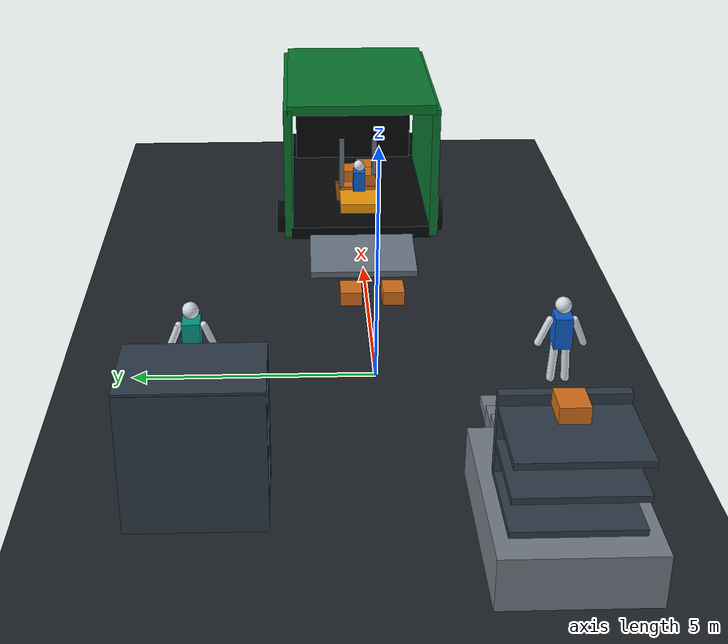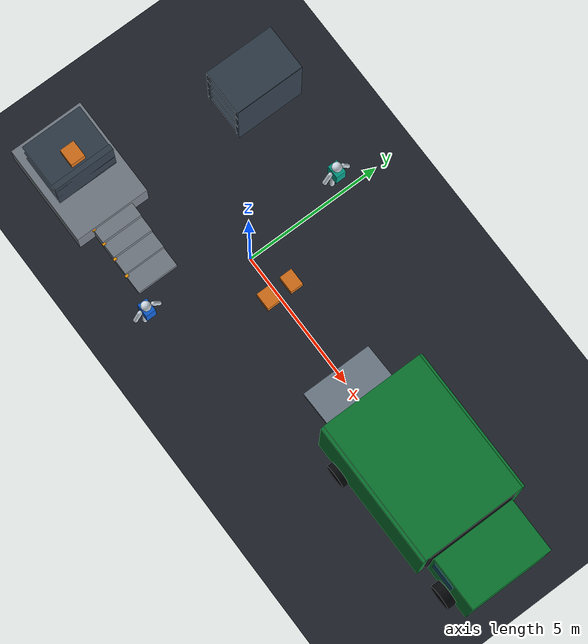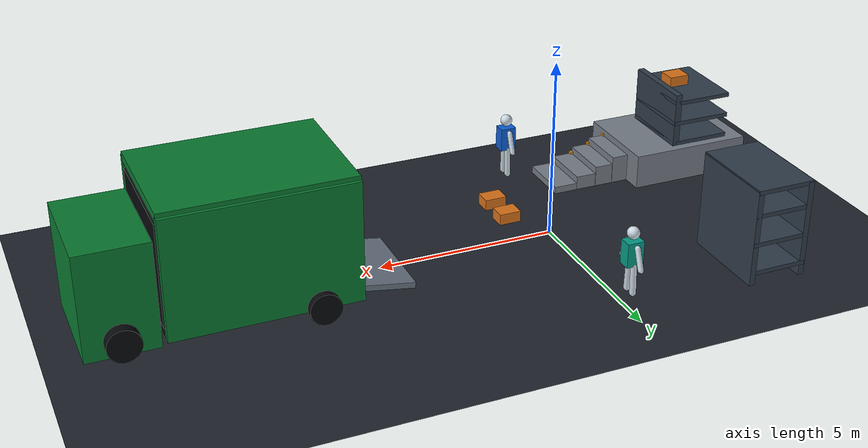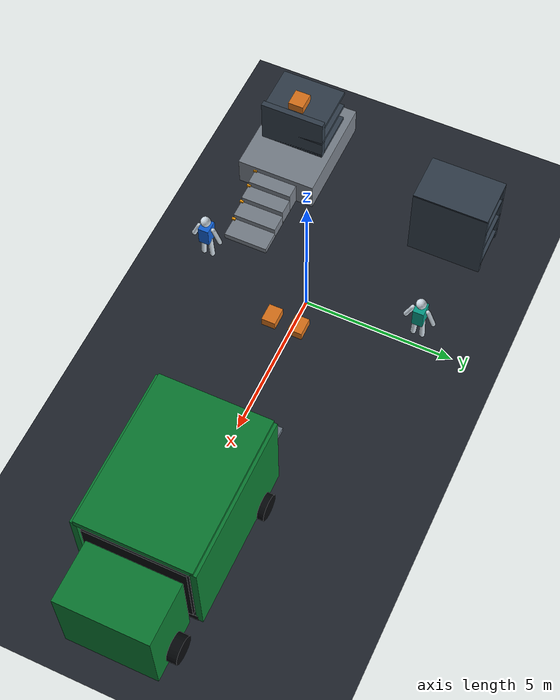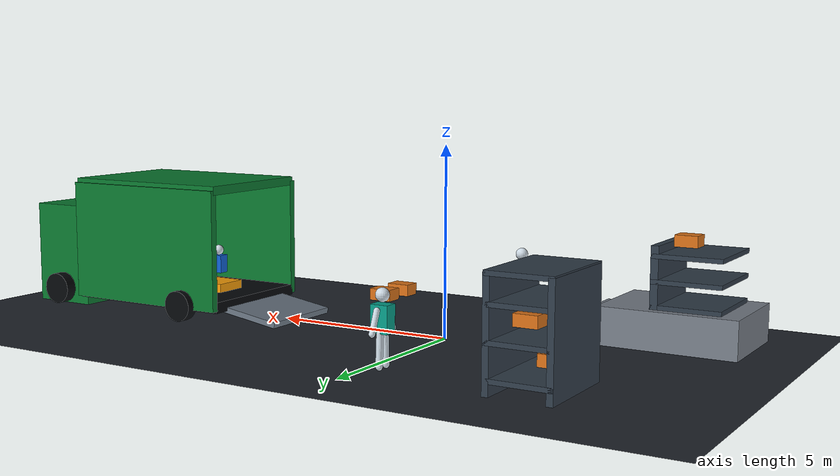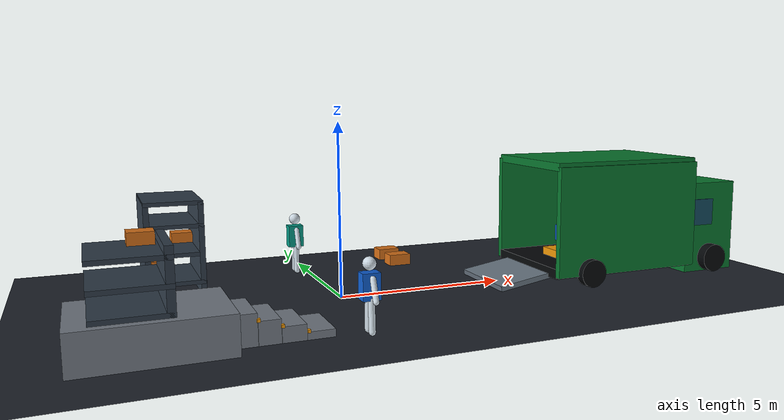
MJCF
<mujoco model="retail_backroom_inbound_receiving_v2">
  <compiler angle="degree"/>
  <option timestep="0.01" gravity="0 0 -9.81"/>
  <statistic center="0 0 1.3" extent="13"/>
  <visual><global offwidth="960" offheight="540"/><headlight ambient="0.48 0.48 0.50" diffuse="0.90 0.90 0.90"/></visual>
  <default><geom contype="0" conaffinity="0"/></default>
  <asset>
    <texture name="floor_tex" type="2d" builtin="checker" rgb1="0.09 0.11 0.14" rgb2="0.16 0.18 0.21" width="256" height="256"/>
    <material name="floor" texture="floor_tex" texrepeat="14 9"/>
    <material name="blue" rgba="0.06 0.38 0.84 1"/>
    <material name="teal" rgba="0.02 0.62 0.54 1"/>
    <material name="shell" rgba="0.82 0.87 0.91 1"/>
    <material name="steel" rgba="0.42 0.47 0.52 1"/>
    <material name="box" rgba="0.86 0.45 0.10 1"/>
    <material name="pallet" rgba="0.48 0.27 0.10 1"/>
    <material name="yellow" rgba="0.98 0.62 0.03 1"/>
    <material name="green" rgba="0.04 0.48 0.19 1"/>
    <material name="dark" rgba="0.02 0.03 0.04 1"/>
    <material name="rack" rgba="0.19 0.24 0.29 1"/>
    <material name="step" rgba="0.47 0.50 0.54 1"/>
    <material name="white" rgba="0.91 0.94 0.96 1"/>
  </asset>
  <worldbody>
    <light pos="-2 -4 12" dir="0.1 0.2 -1" diffuse="0.95 0.95 0.95"/>
    <light pos="7 4 8" dir="-0.2 -0.1 -1" diffuse="0.55 0.62 0.66"/>
    <geom name="receiving_floor" type="plane" size="14 8 0.1" material="floor" contype="1" conaffinity="1"/>
    <camera name="unload" pos="0 -0.8 4.5" xyaxes="0.09950 -0.99504 0 0.37783 0.03778 0.92510"/>
    <camera name="receiving" pos="5 -13 7.2" xyaxes="0.94 0.34 0 -0.20 0.55 0.81"/>
    <camera name="stocking" pos="-3 -13 6.7" xyaxes="1 0 0 0 0.58 0.82"/>
    <camera name="stairs" pos="-8 -10 5.7" xyaxes="0.78 -0.63 0 0.32 0.39 0.86"/>

    <!-- Open-backed delivery truck. The pallet begins inside the cargo bay. -->
    <geom type="box" pos="8.6 0 0.45" size="2.5 1.75 0.15" material="dark"/>
    <geom type="box" pos="8.6 -1.80 2.0" size="2.5 0.10 1.65" material="green"/>
    <geom type="box" pos="8.6 1.80 2.0" size="2.5 0.10 1.65" material="green"/>
    <geom type="box" pos="8.6 0 3.65" size="2.5 1.80 0.12" material="green"/>
    <geom type="box" pos="11.05 0 2.0" size="0.06 1.60 1.40" material="dark"/>
    <geom type="box" pos="12.1 0 1.45" size="0.95 1.48 1.45" material="green"/>
    <geom type="box" pos="11.72 -1.49 1.95" size="0.45 0.035 0.42" rgba="0.08 0.30 0.38 1"/>
    <geom type="box" pos="5.35 0 0.20" size="0.85 1.28 0.08" material="steel" euler="0 -9 0"/>
    <geom type="cylinder" pos="7.2 -1.95 0.45" size="0.42 0.16" euler="90 0 0" material="dark"/>
    <geom type="cylinder" pos="7.2 1.95 0.45" size="0.42 0.16" euler="90 0 0" material="dark"/>
    <geom type="cylinder" pos="12.1 -1.64 0.45" size="0.44 0.16" euler="90 0 0" material="dark"/>
    <geom type="cylinder" pos="12.1 1.64 0.45" size="0.44 0.16" euler="90 0 0" material="dark"/>

    <!-- Ground storage rack. -->
    <geom type="box" pos="-5.0 3.35 1.35" size="0.08 1.25 1.35" material="rack"/>
    <geom type="box" pos="-3.5 3.35 1.35" size="0.08 1.25 1.35" material="rack"/>
    <geom type="box" pos="-4.25 3.35 0.35" size="0.82 1.25 0.06" material="rack"/>
    <geom type="box" pos="-4.25 3.35 1.18" size="0.82 1.25 0.06" material="rack"/>
    <geom type="box" pos="-4.25 3.35 2.01" size="0.82 1.25 0.06" material="rack"/>
    <geom type="box" pos="-4.25 3.35 2.68" size="0.82 1.25 0.06" material="rack"/>
    <geom type="box" pos="-4.55 3.35 0.70" size="0.30 0.26 0.15" material="box"/>
    <geom type="box" pos="-3.95 3.35 1.52" size="0.30 0.26 0.15" material="box"/>

    <!-- Raised stock level with four unmistakable treads and yellow nosing. -->
    <geom name="inbound_step_1" type="box" pos="-1.55 -2.75 0.10" size="0.35 0.75 0.10" material="step"/>
    <geom name="inbound_step_2" type="box" pos="-2.20 -2.75 0.20" size="0.30 0.75 0.20" material="step"/>
    <geom name="inbound_step_3" type="box" pos="-2.78 -2.75 0.30" size="0.27 0.75 0.30" material="step"/>
    <geom name="inbound_step_4" type="box" pos="-3.31 -2.75 0.40" size="0.25 0.75 0.40" material="step"/>
    <geom type="box" pos="-1.86 -3.48 0.22" size="0.04 0.06 0.04" material="yellow"/>
    <geom type="box" pos="-2.48 -3.48 0.42" size="0.04 0.06 0.04" material="yellow"/>
    <geom type="box" pos="-3.04 -3.48 0.62" size="0.04 0.06 0.04" material="yellow"/>
    <geom type="box" pos="-3.55 -3.48 0.82" size="0.04 0.06 0.04" material="yellow"/>
    <geom name="upper_stock_floor" type="box" pos="-5.35 -2.75 0.50" size="1.80 1.35 0.50" material="step"/>
    <geom type="box" pos="-4.95 -2.75 1.80" size="0.10 1.10 0.80" material="rack"/>
    <geom type="box" pos="-5.75 -2.75 1.06" size="0.90 1.10 0.06" material="rack"/>
    <geom type="box" pos="-5.75 -2.75 1.70" size="0.90 1.10 0.06" material="rack"/>
    <geom type="box" pos="-5.75 -2.75 2.34" size="0.90 1.10 0.06" material="rack"/>
    <geom type="box" pos="-5.45 -2.75 2.64" size="0.30 0.26 0.15" material="box"/>

    <body name="stock_worker_low" mocap="true" pos="-0.4 3.7 0">
      <geom type="box" pos="0 0 1.22" size="0.23 0.18 0.34" material="teal"/>
      <geom type="sphere" pos="0 0 1.77" size="0.17" material="shell"/>
      <geom type="capsule" fromto="0 -0.25 1.44 0 -0.46 0.92" size="0.075" material="shell"/>
      <geom type="capsule" fromto="0 0.25 1.44 0 0.46 0.92" size="0.075" material="shell"/>
      <geom type="capsule" fromto="0 -0.11 0.90 0 -0.15 0.10" size="0.085" material="shell"/>
      <geom type="capsule" fromto="0 0.11 0.90 0 0.15 0.10" size="0.085" material="shell"/>
    </body>
    <body name="stock_worker_high" mocap="true" pos="-0.4 -3.7 0">
      <geom type="box" pos="0 0 1.22" size="0.23 0.18 0.34" material="blue"/>
      <geom type="sphere" pos="0 0 1.77" size="0.17" material="shell"/>
      <geom type="capsule" fromto="0 -0.25 1.44 0 -0.46 0.92" size="0.075" material="shell"/>
      <geom type="capsule" fromto="0 0.25 1.44 0 0.46 0.92" size="0.075" material="shell"/>
      <geom type="capsule" fromto="0 -0.11 0.90 0 -0.15 0.10" size="0.085" material="shell"/>
      <geom type="capsule" fromto="0 0.11 0.90 0 0.15 0.10" size="0.085" material="shell"/>
    </body>

    <body name="inbound_pallet" mocap="true" pos="8.55 0 0.42">
      <geom type="box" pos="0 0 0.10" size="0.68 0.56 0.08" material="pallet"/>
      <geom name="inbound_stack_1" type="box" pos="-0.30 -0.24 0.36" size="0.29 0.22 0.15" material="box"/>
      <geom name="inbound_stack_2" type="box" pos="0.30 -0.24 0.36" size="0.29 0.22 0.15" material="box"/>
      <geom name="inbound_stack_3" type="box" pos="-0.30 0.24 0.36" size="0.29 0.22 0.15" material="box"/>
      <geom name="inbound_stack_4" type="box" pos="0.30 0.24 0.36" size="0.29 0.22 0.15" material="box"/>
      <geom name="inbound_stack_5" type="box" pos="-0.30 -0.24 0.68" size="0.29 0.22 0.15" material="box"/>
      <geom name="inbound_stack_6" type="box" pos="0.30 -0.24 0.68" size="0.29 0.22 0.15" material="box"/>
      <geom name="inbound_stack_7" type="box" pos="0 0.24 0.68" size="0.29 0.22 0.15" material="box"/>
    </body>
    <body name="stock_carton_low" mocap="true" pos="1.55 0.45 1.10"><geom name="stock_carton_low_geom" type="box" size="0.30 0.23 0.15" material="box"/></body>
    <body name="stock_carton_high" mocap="true" pos="1.55 -0.45 1.10"><geom name="stock_carton_high_geom" type="box" size="0.30 0.23 0.15" material="box"/></body>

    <body name="inbound_forklift" mocap="true" pos="7.60 0 0">
      <geom type="box" pos="0 0 0.58" size="0.62 0.48 0.26" material="yellow"/>
      <geom type="box" pos="0.48 -0.42 1.18" size="0.07 0.06 1.02" material="steel"/>
      <geom type="box" pos="0.48 0.42 1.18" size="0.07 0.06 1.02" material="steel"/>
      <geom type="box" pos="0.82 -0.30 0.18" size="0.62 0.07 0.045" material="steel"/>
      <geom type="box" pos="0.82 0.30 0.18" size="0.62 0.07 0.045" material="steel"/>
      <geom type="cylinder" pos="-0.42 -0.52 0.31" size="0.22 0.10" euler="90 0 0" material="dark"/>
      <geom type="cylinder" pos="-0.42 0.52 0.31" size="0.22 0.10" euler="90 0 0" material="dark"/>
      <geom type="cylinder" pos="0.42 -0.52 0.31" size="0.22 0.10" euler="90 0 0" material="dark"/>
      <geom type="cylinder" pos="0.42 0.52 0.31" size="0.22 0.10" euler="90 0 0" material="dark"/>
      <geom type="box" pos="-0.20 0 1.35" size="0.18 0.15 0.25" material="blue"/>
      <geom type="sphere" pos="-0.20 0 1.74" size="0.14" material="shell"/>
    </body>
  </worldbody>
</mujoco>
